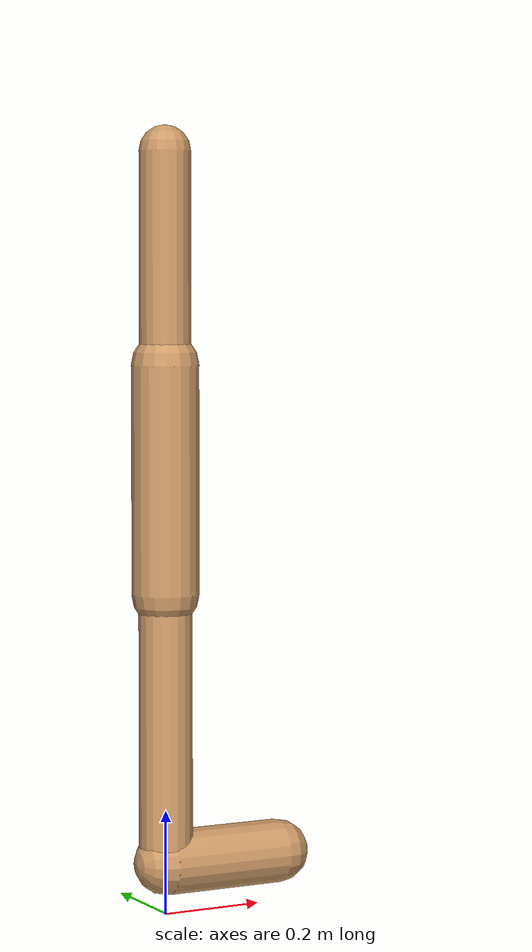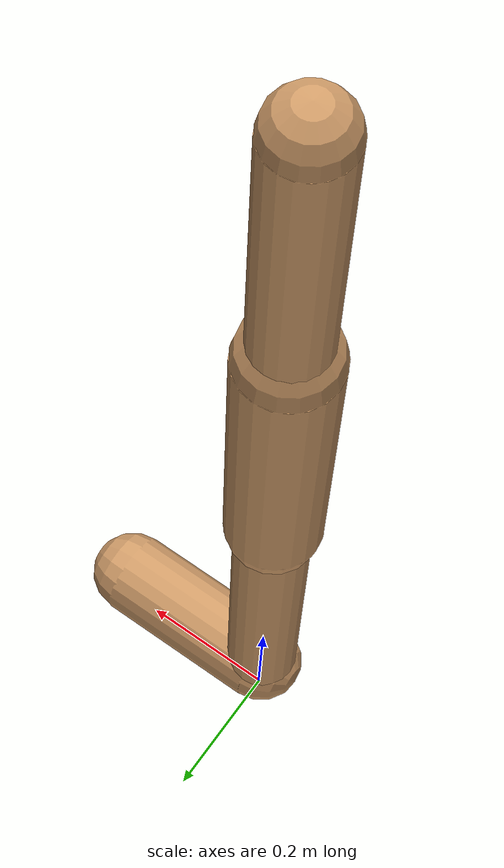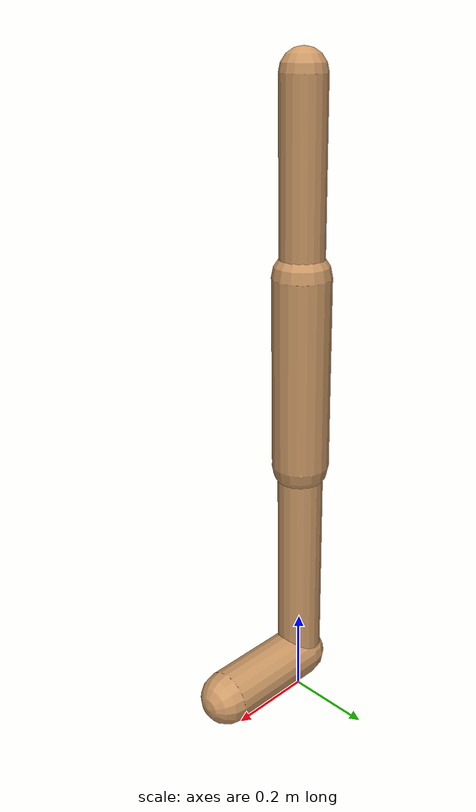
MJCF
<mujoco model="walker2d">
  <compiler angle="degree" coordinate="global" inertiafromgeom="true" />
  <default>
    <joint armature="0.01" damping=".1" limited="true" />
    <geom conaffinity="0" condim="3" contype="1" density="1000" friction="0.8 .1 .1" rgba="0.8 0.6 .4 1" />
  </default>
  <option integrator="RK4" timestep="0.002" />
  <worldbody>

    <body name="torso" pos="0 0 -0.0357451941811552">
      <joint armature="0" axis="1 0 0" damping="0" limited="false" name="ignorex" pos="0 0 0" stiffness="0" type="slide" />
      <joint armature="0" axis="0 0 1" damping="0" limited="false" name="ignorez" pos="0 0 0" ref="1.25" stiffness="0" type="slide" />
      <joint armature="0" axis="0 1 0" damping="0" limited="false" name="ignorey" pos="0 0 0" stiffness="0" type="hinge" />
      <geom fromto="0 0 1.45 0 0 1.05" name="torso_geom" size="0.04921172326331004" type="capsule" />
      <body name="thigh">
        <joint axis="0 -1 0" name="thigh_joint" pos="0 0 1.05" range="-150 0" type="hinge" />
        <geom fromto="0.0 0.0 1.05 0.0 0.0 0.6169319340858104" name="thigh_geom" size="0.06459803519337189" type="capsule" />
        <body name="leg" pos="0.0 0.0 0.016931934085810396">
          <joint axis="0 -1 0" name="leg_joint" pos="0 0 0.6" range="-150 0" type="hinge" />
          <geom fromto="0.0 0.0 0.6 0.0 0.0 0.11881326009534485" name="leg_geom" size="0.05167842815469751" type="capsule" />
          <body name="foot" pos="0.0 0.0 0.01881326009534484">
            <joint axis="0 -1 0" name="foot_joint" pos="0 0 0.1" range="-45 45" type="hinge" />
            <geom fromto="-0.0 0.0 0.1 0.24167806977428233 0.0 0.1" name="foot_geom" size="0.061712921070289105" type="capsule" />
          </body>
        </body>
      </body>

      <body name="thigh_left">
        <joint axis="0 -1 0" name="thigh_left_joint" pos="0 0 1.05" range="-150 0" type="hinge" />
        <geom fromto="0.0 0.0 1.05 0.0 0.0 0.6169319340858104" name="thigh_left_geom" rgba=".7 .3 .6 1" size="0.06459803519337189" type="capsule" />
        <body name="leg_left" pos="0.0 0.0 0.016931934085810396">
          <joint axis="0 -1 0" name="leg_left_joint" pos="0 0 0.6" range="-150 0" type="hinge" />
          <geom fromto="0.0 0.0 0.6 0.0 0.0 0.11881326009534485" name="leg_left_geom" rgba=".7 .3 .6 1" size="0.05167842815469751" type="capsule" />
          <body name="foot_left" pos="0.0 0.0 0.01881326009534484">
            <joint axis="0 -1 0" name="foot_left_joint" pos="0 0 0.1" range="-45 45" type="hinge" />
            <geom fromto="-0.0 0.0 0.1 0.24167806977428233 0.0 0.1" name="foot_left_geom" rgba=".7 .3 .6 1" size="0.061712921070289105" type="capsule" />
          </body>
        </body>
      </body>
    </body>
  </worldbody>
  <actuator>

    <motor ctrllimited="true" ctrlrange="-1.0 1.0" gear="100" joint="thigh_joint" />
    <motor ctrllimited="true" ctrlrange="-1.0 1.0" gear="100" joint="leg_joint" />
    <motor ctrllimited="true" ctrlrange="-1.0 1.0" gear="100" joint="foot_joint" />
    <motor ctrllimited="true" ctrlrange="-1.0 1.0" gear="100" joint="thigh_left_joint" />
    <motor ctrllimited="true" ctrlrange="-1.0 1.0" gear="100" joint="leg_left_joint" />
    <motor ctrllimited="true" ctrlrange="-1.0 1.0" gear="100" joint="foot_left_joint" />

  </actuator>
</mujoco>
